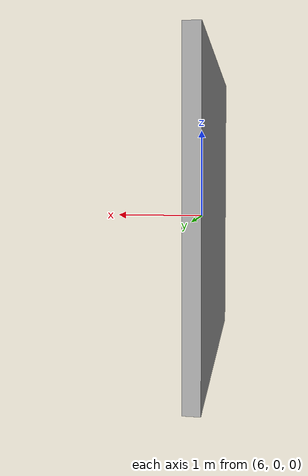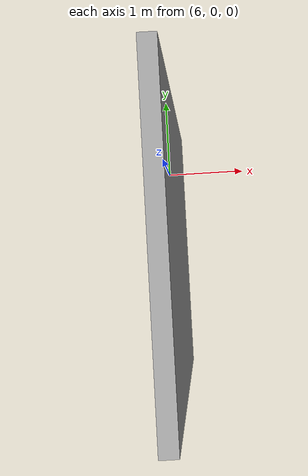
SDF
<?xml version="1.0"?>
<sdf version="1.3">
  <model name="arrow_wall">
    <static>true</static>
    <pose>0 0 0 0 0 0</pose>
    <link name="link">
      <collision name="front_collision">
        <pose>6.0 -1 0 0 0 0</pose>
        <geometry>
          <box>
            <size>0.2 4 4.0</size>
          </box>
        </geometry>
      </collision>
      <visual name="front_visual">
        <pose>6.0 -1 0 0 0 0</pose>
        <geometry>
          <mesh>
            <uri>model://arrow_wall/meshes/arrow_wall.dae</uri>
          </mesh>
        </geometry>
      </visual>
    </link>
  </model>
</sdf>
